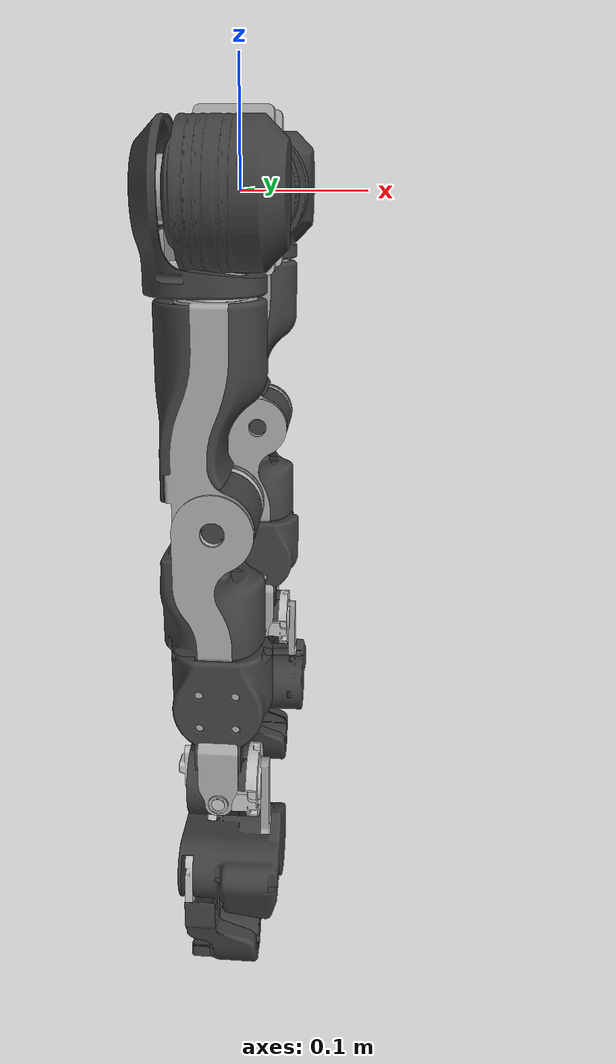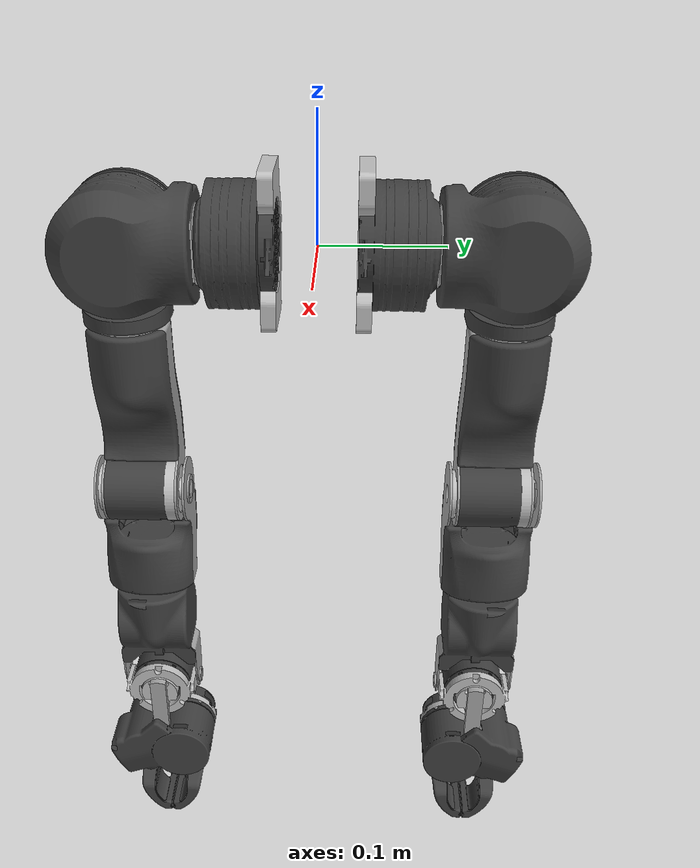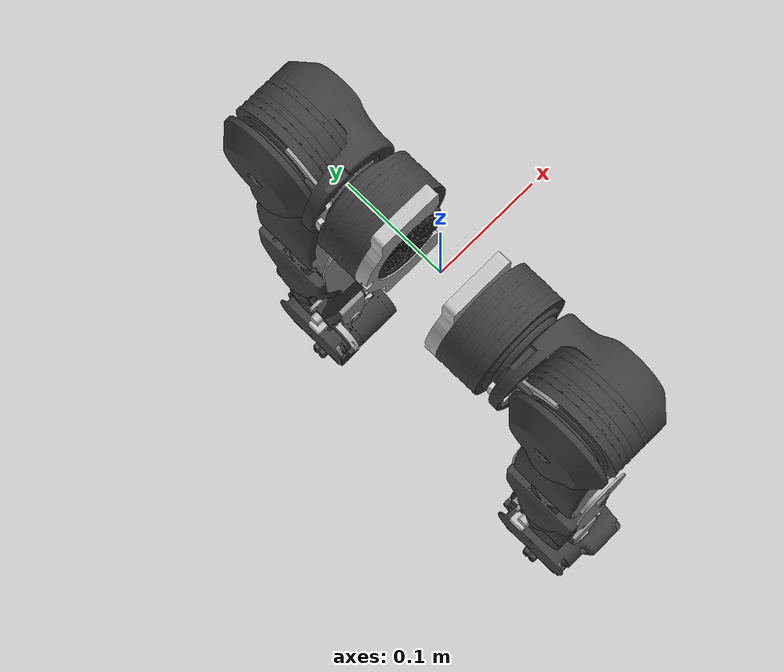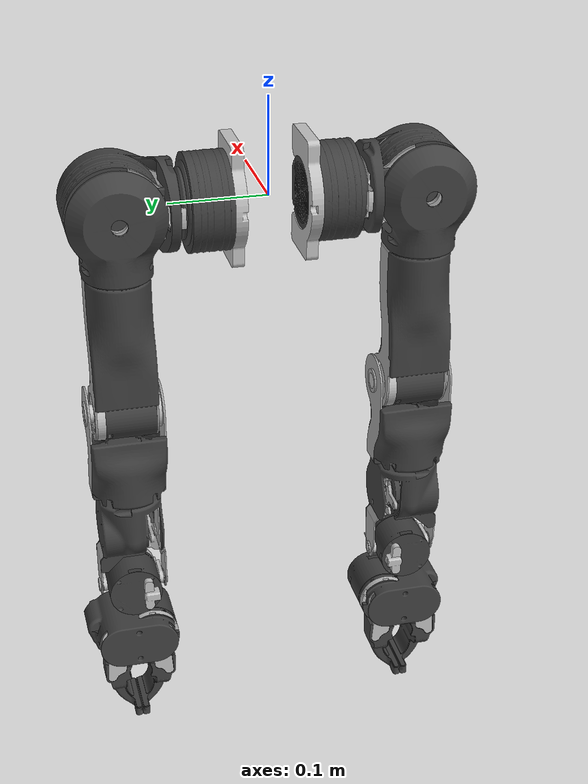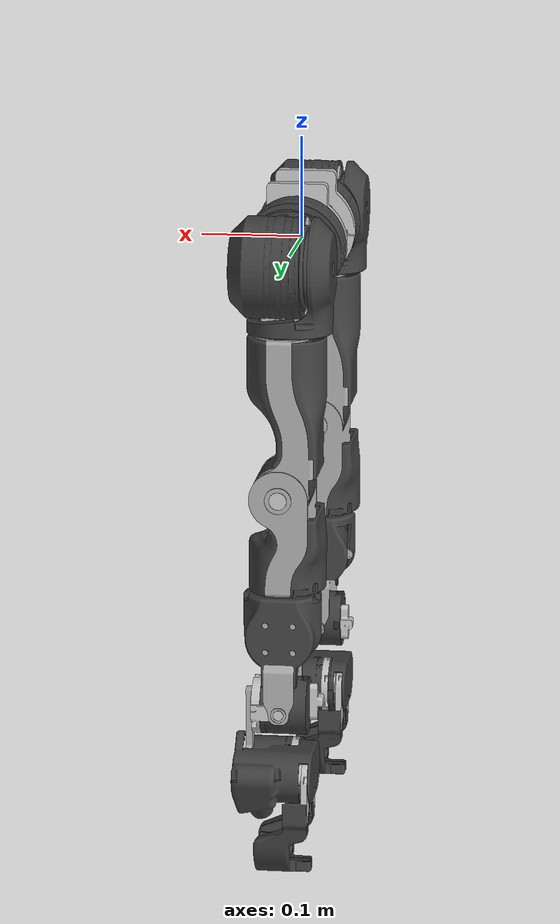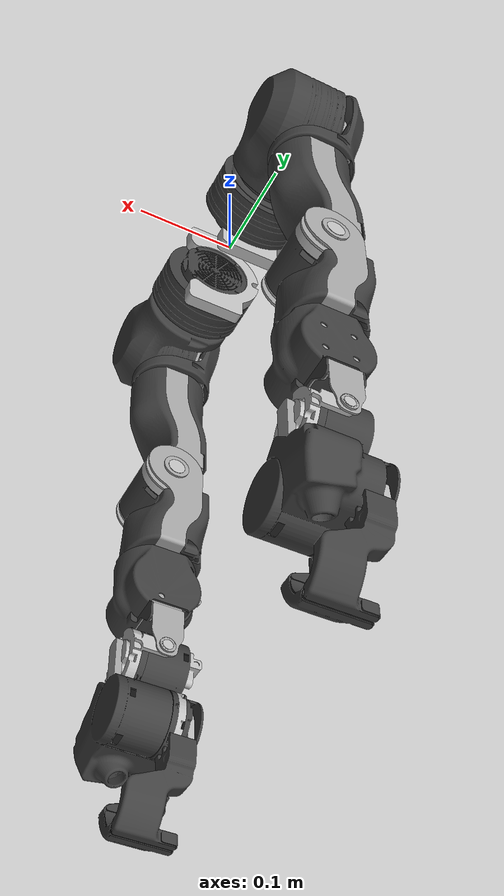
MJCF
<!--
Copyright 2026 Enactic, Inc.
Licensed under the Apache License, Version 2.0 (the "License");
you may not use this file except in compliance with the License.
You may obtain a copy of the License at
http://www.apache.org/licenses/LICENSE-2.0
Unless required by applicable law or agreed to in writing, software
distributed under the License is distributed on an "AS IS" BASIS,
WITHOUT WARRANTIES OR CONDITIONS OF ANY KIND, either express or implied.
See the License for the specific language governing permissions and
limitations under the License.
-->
<?xml version='1.0' encoding='utf-8'?>

<mujoco model="openarm_v20">
  <default>
    <joint stiffness="0" ref="0.0" />
    <default class="robot">
      <default class="motor_DM8009">
        <joint frictionloss="0.2" damping="1.0" armature="0.0081" limited="true" type="hinge" />
        <motor forcelimited="true" forcerange="-40 40" />
      </default>
      <default class="motor_DM4340">
        <joint frictionloss="0.1" damping="0.9" armature="0.1600" limited="true" type="hinge" />
        <motor forcelimited="true" forcerange="-27 27" />
      </default>
      <default class="motor_DM4310">
        <joint frictionloss="0.04" damping="0.9" armature="0.0100" limited="true" type="hinge" />
        <motor forcelimited="true" forcerange="-7 7" />
      </default>
      <default class="motor_DM3507">
        <joint frictionloss="0.01" damping="0.01" armature="0.0049" limited="true" type="hinge" />
        <motor forcelimited="true" forcerange="-7 7" />
      </default>
      <default class="motor_finger">
        <joint limited="true" type="hinge" damping="2" />
        <position forcelimited="true" forcerange="-333 333" ctrllimited="true" ctrlrange="0 0.7854" />
      </default>
      <default class="lifter">
        <joint limited="true" type="slide" damping="50" />
        <position forcelimited="true" forcerange="-3000 3000" ctrllimited="true" ctrlrange="0 0.3" />
      </default>
      <default class="position_DM8009">
        <position kp="200" kv="150" forcelimited="true" forcerange="-40 40" />
      </default>
      <default class="position_DM4340">
        <position kp="100" kv="30" forcelimited="true" forcerange="-27 27" />
      </default>
      <default class="position_DM4310">
        <position kp="200" kv="5" forcelimited="true" forcerange="-7 7" />
      </default>
      <default class="position_DM3507">
        <position kp="200" kv="5" forcelimited="true" forcerange="-7 7" />
      </default>
      <default class="position_lifter">
        <position kp="8000" kv="4000" forcelimited="true" forcerange="-3000 3000" />
      </default>
      <default class="collision">
        <geom material="collision_material" condim="3" conaffinity="1" priority="1" group="3" solref="0.005 1" friction="1 0.01 0.01" />
        <equality solimp="0.99 0.999 1e-05" solref="0.005 1" />
      </default>
      <default class="visual">
        <geom material="visualgeom" contype="0" conaffinity="0" group="2" />
      </default>
    </default>
  </default>
  <compiler angle="radian" meshdir="assets" />
  <asset>
    <material name="collision_material" rgba="0.8 0.2 0.2 0.5" />
    <material name="visualgeom" rgba="0.7 0.7 0.7 1" />
    <material name="pale_silver" rgba="0.752941 0.752941 0.752941 1" specular="1.0" shininess="0.9" reflectance="0.8" />
    <material name="metal_silver" rgba="0.65 0.65 0.65 1.0" specular="1.0" shininess="0.9" reflectance="0.8" />
    <material name="matte_black" rgba="0.247 0.247 0.247 1.0" reflectance="0.05" shininess="0.5" />

    <mesh name="base_link_left_00" content_type="model/obj" file="visual/arm/base_link_00.obj" scale="1 -1 1" />
    <mesh name="base_link_left_01" content_type="model/obj" file="visual/arm/base_link_01.obj" scale="1 -1 1" />
    <mesh name="base_link_left_collision_00" content_type="model/stl" file="collision/base_link.stl" scale="1 -1 1" />
    <mesh name="link1_left_00" content_type="model/obj" file="visual/arm/link1_00.obj" scale="1 -1 1" />
    <mesh name="link1_left_01" content_type="model/obj" file="visual/arm/link1_01.obj" scale="1 -1 1" />
    <mesh name="link1_left_02" content_type="model/obj" file="visual/arm/link1_02.obj" scale="1 -1 1" />
    <mesh name="link1_left_collision_00" content_type="model/stl" file="collision/link1.stl" scale="1 -1 1" />
    <mesh name="link2_left_00" content_type="model/obj" file="visual/arm/link2_00.obj" scale="1 -1 1" />
    <mesh name="link2_left_01" content_type="model/obj" file="visual/arm/link2_01.obj" scale="1 -1 1" />
    <mesh name="link2_left_02" content_type="model/obj" file="visual/arm/link2_02.obj" scale="1 -1 1" />
    <mesh name="link2_left_collision_00" content_type="model/stl" file="collision/link2.stl" scale="1 -1 1" />
    <mesh name="link3_left_00" content_type="model/obj" file="visual/arm/link3_00.obj" />
    <mesh name="link3_left_01" content_type="model/obj" file="visual/arm/link3_01.obj" />
    <mesh name="link3_left_02" content_type="model/obj" file="visual/arm/link3_02.obj" />
    <mesh name="link3_left_collision_00" content_type="model/stl" file="collision/link3.stl" />
    <mesh name="link4_left_00" content_type="model/obj" file="visual/arm/link4_00.obj" />
    <mesh name="link4_left_01" content_type="model/obj" file="visual/arm/link4_01.obj" />
    <mesh name="link4_left_02" content_type="model/obj" file="visual/arm/link4_02.obj" />
    <mesh name="link4_left_collision_00" content_type="model/stl" file="collision/link4.stl" />
    <mesh name="link5_left_00" content_type="model/obj" file="visual/arm/link5_00.obj" scale="1 -1 1" />
    <mesh name="link5_left_01" content_type="model/obj" file="visual/arm/link5_01.obj" scale="1 -1 1" />
    <mesh name="link5_left_02" content_type="model/obj" file="visual/arm/link5_02.obj" scale="1 -1 1" />
    <mesh name="link5_left_collision_00" content_type="model/stl" file="collision/link5_part_00.stl" scale="1 -1 1" />
    <mesh name="link5_left_collision_01" content_type="model/stl" file="collision/link5_part_01.stl" scale="1 -1 1" />
    <mesh name="link5_left_collision_02" content_type="model/stl" file="collision/link5_part_02.stl" scale="1 -1 1" />
    <mesh name="link6_left_00" content_type="model/obj" file="visual/arm/link6_00.obj" scale="1 -1 1" />
    <mesh name="link6_left_01" content_type="model/obj" file="visual/arm/link6_01.obj" scale="1 -1 1" />
    <mesh name="link6_left_02" content_type="model/obj" file="visual/arm/link6_02.obj" scale="1 -1 1" />
    <mesh name="link6_left_collision_00" content_type="model/stl" file="collision/link6.stl" scale="1 -1 1" />
    <mesh name="ee_base_link_left_00" content_type="model/obj" file="visual/gripper/ee_base_link_00.obj" scale="1 -1 1" />
    <mesh name="ee_base_link_left_01" content_type="model/obj" file="visual/gripper/ee_base_link_01.obj" scale="1 -1 1" />
    <mesh name="ee_base_link_left_02" content_type="model/obj" file="visual/gripper/ee_base_link_02.obj" scale="1 -1 1" />
    <mesh name="ee_base_link_left_collision_00" content_type="model/stl" file="collision/ee_base_link.stl" scale="1 -1 1" />
    <mesh name="finger_inner_left_00" content_type="model/obj" file="visual/gripper/finger_inner_00.obj" scale="1 -1 1" />
    <mesh name="finger_inner_left_01" content_type="model/obj" file="visual/gripper/finger_inner_01.obj" scale="1 -1 1" />
    <mesh name="finger_inner_left_02" content_type="model/obj" file="visual/gripper/finger_inner_02.obj" scale="1 -1 1" />
    <mesh name="finger_inner_left_collision_00" content_type="model/stl" file="collision/finger_inner_part_00.stl" scale="1 -1 1" />
    <mesh name="finger_inner_left_collision_01" content_type="model/stl" file="collision/finger_inner_part_01.stl" scale="1 -1 1" />
    <mesh name="finger_inner_left_collision_02" content_type="model/stl" file="collision/finger_inner_part_02.stl" scale="1 -1 1" />
    <mesh name="finger_inner_left_collision_03" content_type="model/stl" file="collision/finger_inner_part_03.stl" scale="1 -1 1" />
    <mesh name="finger_outer_left_00" content_type="model/obj" file="visual/gripper/finger_outer_00.obj" scale="1 -1 1" />
    <mesh name="finger_outer_left_01" content_type="model/obj" file="visual/gripper/finger_outer_01.obj" scale="1 -1 1" />
    <mesh name="finger_outer_left_02" content_type="model/obj" file="visual/gripper/finger_outer_02.obj" scale="1 -1 1" />
    <mesh name="finger_outer_left_collision_00" content_type="model/stl" file="collision/finger_outer_part_00.stl" scale="1 -1 1" />
    <mesh name="finger_outer_left_collision_01" content_type="model/stl" file="collision/finger_outer_part_01.stl" scale="1 -1 1" />
    <mesh name="finger_outer_left_collision_02" content_type="model/stl" file="collision/finger_outer_part_02.stl" scale="1 -1 1" />
    <mesh name="finger_outer_left_collision_03" content_type="model/stl" file="collision/finger_outer_part_03.stl" scale="1 -1 1" />
    <mesh name="base_link_right_00" content_type="model/obj" file="visual/arm/base_link_00.obj" />
    <mesh name="base_link_right_01" content_type="model/obj" file="visual/arm/base_link_01.obj" />
    <mesh name="base_link_right_collision_00" content_type="model/stl" file="collision/base_link.stl" />
    <mesh name="link1_right_00" content_type="model/obj" file="visual/arm/link1_00.obj" />
    <mesh name="link1_right_01" content_type="model/obj" file="visual/arm/link1_01.obj" />
    <mesh name="link1_right_02" content_type="model/obj" file="visual/arm/link1_02.obj" />
    <mesh name="link1_right_collision_00" content_type="model/stl" file="collision/link1.stl" />
    <mesh name="link2_right_00" content_type="model/obj" file="visual/arm/link2_00.obj" />
    <mesh name="link2_right_01" content_type="model/obj" file="visual/arm/link2_01.obj" />
    <mesh name="link2_right_02" content_type="model/obj" file="visual/arm/link2_02.obj" />
    <mesh name="link2_right_collision_00" content_type="model/stl" file="collision/link2.stl" />
    <mesh name="link3_right_00" content_type="model/obj" file="visual/arm/link3_00.obj" />
    <mesh name="link3_right_01" content_type="model/obj" file="visual/arm/link3_01.obj" />
    <mesh name="link3_right_02" content_type="model/obj" file="visual/arm/link3_02.obj" />
    <mesh name="link3_right_collision_00" content_type="model/stl" file="collision/link3.stl" />
    <mesh name="link4_right_00" content_type="model/obj" file="visual/arm/link4_00.obj" />
    <mesh name="link4_right_01" content_type="model/obj" file="visual/arm/link4_01.obj" />
    <mesh name="link4_right_02" content_type="model/obj" file="visual/arm/link4_02.obj" />
    <mesh name="link4_right_collision_00" content_type="model/stl" file="collision/link4.stl" />
    <mesh name="link5_right_00" content_type="model/obj" file="visual/arm/link5_00.obj" />
    <mesh name="link5_right_01" content_type="model/obj" file="visual/arm/link5_01.obj" />
    <mesh name="link5_right_02" content_type="model/obj" file="visual/arm/link5_02.obj" />
    <mesh name="link5_right_collision_00" content_type="model/stl" file="collision/link5_part_00.stl" />
    <mesh name="link5_right_collision_01" content_type="model/stl" file="collision/link5_part_01.stl" />
    <mesh name="link5_right_collision_02" content_type="model/stl" file="collision/link5_part_02.stl" />
    <mesh name="link6_right_00" content_type="model/obj" file="visual/arm/link6_00.obj" />
    <mesh name="link6_right_01" content_type="model/obj" file="visual/arm/link6_01.obj" />
    <mesh name="link6_right_02" content_type="model/obj" file="visual/arm/link6_02.obj" />
    <mesh name="link6_right_collision_00" content_type="model/stl" file="collision/link6.stl" />
    <mesh name="ee_base_link_right_00" content_type="model/obj" file="visual/gripper/ee_base_link_00.obj" />
    <mesh name="ee_base_link_right_01" content_type="model/obj" file="visual/gripper/ee_base_link_01.obj" />
    <mesh name="ee_base_link_right_02" content_type="model/obj" file="visual/gripper/ee_base_link_02.obj" />
    <mesh name="ee_base_link_right_collision_00" content_type="model/stl" file="collision/ee_base_link.stl" />
    <mesh name="finger_inner_right_00" content_type="model/obj" file="visual/gripper/finger_inner_00.obj" />
    <mesh name="finger_inner_right_01" content_type="model/obj" file="visual/gripper/finger_inner_01.obj" />
    <mesh name="finger_inner_right_02" content_type="model/obj" file="visual/gripper/finger_inner_02.obj" />
    <mesh name="finger_inner_right_collision_00" content_type="model/stl" file="collision/finger_inner_part_00.stl" />
    <mesh name="finger_inner_right_collision_01" content_type="model/stl" file="collision/finger_inner_part_01.stl" />
    <mesh name="finger_inner_right_collision_02" content_type="model/stl" file="collision/finger_inner_part_02.stl" />
    <mesh name="finger_inner_right_collision_03" content_type="model/stl" file="collision/finger_inner_part_03.stl" />
    <mesh name="finger_outer_right_00" content_type="model/obj" file="visual/gripper/finger_outer_00.obj" />
    <mesh name="finger_outer_right_01" content_type="model/obj" file="visual/gripper/finger_outer_01.obj" />
    <mesh name="finger_outer_right_02" content_type="model/obj" file="visual/gripper/finger_outer_02.obj" />
    <mesh name="finger_outer_right_collision_00" content_type="model/stl" file="collision/finger_outer_part_00.stl" />
    <mesh name="finger_outer_right_collision_01" content_type="model/stl" file="collision/finger_outer_part_01.stl" />
    <mesh name="finger_outer_right_collision_02" content_type="model/stl" file="collision/finger_outer_part_02.stl" />
    <mesh name="finger_outer_right_collision_03" content_type="model/stl" file="collision/finger_outer_part_03.stl" />
  </asset>
  <worldbody>
    <body name="openarm_left_base_link" pos="0 0.031 0">
      <inertial pos="-0.00253124 0.0258186 -2.70658e-05" quat="-1.46856942085e-06 0.70739772103 0.706815721259 2.1457591538e-05" mass="1.14323" diaginertia="0.00159935 0.00113608 0.000750542" />
      <geom name="base_link_left_00" type="mesh" mesh="base_link_left_00" class="visual" material="matte_black" quat="0 0 1 0" />
      <geom name="base_link_left_01" type="mesh" mesh="base_link_left_01" class="visual" material="pale_silver" quat="0 0 1 0" />
      <geom name="base_link_left_collision_00" type="mesh" mesh="base_link_left_collision_00" class="collision" quat="0 0 1 0" />
      <body name="openarm_left_link1" pos="0 0.0625 0">
        <inertial pos="0.00090035 0.044466 2.88441e-05" quat="0.999901 -0.000371041 -5.04627e-05 -0.0140338" mass="1.14167" diaginertia="0.00109459 0.000758935 0.000670659" />
        <joint name="openarm_left_joint1" pos="0 0 0" axis="0 1 0" range="-3.4907 1.3963" actuatorfrcrange="-40 40" class="motor_DM8009" />
        <geom name="link1_left_00" type="mesh" mesh="link1_left_00" class="visual" material="matte_black" />
        <geom name="link1_left_01" type="mesh" mesh="link1_left_01" class="visual" material="pale_silver" />
        <geom name="link1_left_02" type="mesh" mesh="link1_left_02" class="visual" material="metal_silver" />
        <geom name="link1_left_collision_00" type="mesh" mesh="link1_left_collision_00" class="collision" />
        <body name="openarm_left_link2" pos="0 0.06 0">
          <inertial pos="-0.0247185 -7.60578e-08 -0.0312643" quat="0.999342 -6.47495e-06 -0.0362804 3.02331e-06" mass="0.277509" diaginertia="0.000153968 0.000113062 8.19211e-05" />
          <joint name="openarm_left_joint2" pos="0 0 0" axis="-1 0 0" range="-3.3161 0.17453" actuatorfrcrange="-40 40" class="motor_DM8009" />
          <geom name="link2_left_00" type="mesh" mesh="link2_left_00" class="visual" material="matte_black" />
          <geom name="link2_left_01" type="mesh" mesh="link2_left_01" class="visual" material="metal_silver" />
          <geom name="link2_left_02" type="mesh" mesh="link2_left_02" class="visual" material="pale_silver" />
          <geom name="link2_left_collision_00" type="mesh" mesh="link2_left_collision_00" class="collision" />
          <body name="openarm_left_link3" pos="0 0 -0.06625">
            <inertial pos="-0.00300862 -0.000514813 -0.109368" quat="0.998906 -0.00891348 0.0458105 0.00280505" mass="1.07386" diaginertia="0.00129561 0.00114038 0.000553361" />
            <joint name="openarm_left_joint3" pos="0 0 0" axis="0 0 -1" range="-1.5708 1.5708" actuatorfrcrange="-27 27" class="motor_DM4340" />
            <geom name="link3_left_00" type="mesh" mesh="link3_left_00" class="visual" material="matte_black" />
            <geom name="link3_left_01" type="mesh" mesh="link3_left_01" class="visual" material="metal_silver" />
            <geom name="link3_left_02" type="mesh" mesh="link3_left_02" class="visual" material="pale_silver" />
            <geom name="link3_left_collision_00" type="mesh" mesh="link3_left_collision_00" class="collision" />
            <body name="openarm_left_link4" pos="0 0 -0.15375">
              <inertial pos="-0.00310326 -0.00136539 -0.0574601" quat="0.996952 0.00947325 0.00348083 0.0773554" mass="0.634853" diaginertia="0.000469894 0.000433114 0.000245134" />
              <joint name="openarm_left_joint4" pos="0 0 0" axis="0 -1 0" range="0 2.4435" actuatorfrcrange="-27 27" class="motor_DM4340" />
              <geom name="link4_left_00" type="mesh" mesh="link4_left_00" class="visual" material="matte_black" />
              <geom name="link4_left_01" type="mesh" mesh="link4_left_01" class="visual" material="pale_silver" />
              <geom name="link4_left_02" type="mesh" mesh="link4_left_02" class="visual" material="metal_silver" />
              <geom name="link4_left_collision_00" type="mesh" mesh="link4_left_collision_00" class="collision" />
              <body name="openarm_left_link5" pos="0 0 -0.0955">
                <inertial pos="-0.000737189 0.000412407 -0.0470938" quat="0.685547 -0.0023482 -0.00297125 0.728019" mass="0.615659" diaginertia="0.000334799 0.00027946 0.000176657" />
                <joint name="openarm_left_joint5" pos="0 0 0" axis="0 0 -1" range="-1.5708 1.5708" actuatorfrcrange="-7 7" class="motor_DM4310" />
                <geom name="link5_left_00" type="mesh" mesh="link5_left_00" class="visual" material="matte_black" />
                <geom name="link5_left_01" type="mesh" mesh="link5_left_01" class="visual" material="pale_silver" />
                <geom name="link5_left_02" type="mesh" mesh="link5_left_02" class="visual" material="metal_silver" />
                <geom name="link5_left_collision_00" type="mesh" mesh="link5_left_collision_00" class="collision" />
                <geom name="link5_left_collision_01" type="mesh" mesh="link5_left_collision_01" class="collision" />
                <geom name="link5_left_collision_02" type="mesh" mesh="link5_left_collision_02" class="collision" />
                <body name="openarm_left_link6" pos="0 0 -0.1205">
                  <inertial pos="2.27438e-05 -0.000686496 5.44e-05" quat="0.999832 -0.0183155 0.000397003 -0.000757974" mass="0.475203" diaginertia="0.000179276 0.000136249 0.000135339" />
                  <joint name="openarm_left_joint6" pos="0 0 0" axis="0 -1 0" range="-0.7854 0.7854" actuatorfrcrange="-7 7" class="motor_DM4310" />
                  <geom name="link6_left_00" type="mesh" mesh="link6_left_00" class="visual" material="matte_black" />
                  <geom name="link6_left_01" type="mesh" mesh="link6_left_01" class="visual" material="metal_silver" />
                  <geom name="link6_left_02" type="mesh" mesh="link6_left_02" class="visual" material="pale_silver" />
                  <geom name="link6_left_collision_00" type="mesh" mesh="link6_left_collision_00" class="collision" />
                  <body name="openarm_left_ee_base_link">
                    <inertial pos="0.0137902 -0.0084073 -0.05938" quat="0.760121 0.648846 -0.0304587 -0.0169317" mass="0.52832" diaginertia="0.000219417 0.000166122 0.000155742" />
                    <joint name="openarm_left_joint7" pos="0 0 0" axis="1 0 0" range="-1.5708 1.5708" actuatorfrcrange="-7 7" class="motor_DM3507" />
                    <geom name="ee_base_link_left_00" pos="0.0205 0 0" quat="1 0 0 0" type="mesh" mesh="ee_base_link_left_00" class="visual" material="matte_black" />
                    <geom name="ee_base_link_left_01" pos="0.0205 0 0" type="mesh" mesh="ee_base_link_left_01" class="visual" material="metal_silver" />
                    <geom name="ee_base_link_left_02" pos="0.0205 0 0" type="mesh" mesh="ee_base_link_left_02" class="visual" material="pale_silver" />
                    <geom name="ee_base_link_left_collision_00" pos="0.0205 0 0" quat="1 0 0 0" type="mesh" mesh="ee_base_link_left_collision_00" class="collision" />
                    <camera name="camera_wrist_left" pos="0.023 0.0182 -0.10236" euler="-0.366519 0.22689 -1.5708" fovy="66" resolution="960 600"/>
                    <site name="left_ee_control_point" pos="0 0 0.0" size="0.01" rgba="0 1 0 1" />
                    <!-- Grasp-point reference frame between the jaws (fingers at z=-0.068 + tip extent),
                         used by the scripted IK pick controller. Invisible (alpha 0). -->
                    <site name="openarm_left_tcp" pos="-0.004 0 -0.135" size="0.005" rgba="0 0 0 0" />
                    <body name="openarm_left_ee_inner_finger" pos="-0.00143 -0.018 -0.068">
                      <inertial pos="-0.0124991 -0.00176593 -0.0241663" quat="0.982638 0.0922084 -0.15927 -0.0235197" mass="0.125979" diaginertia="3.8543e-05 3.6883e-05 1.43942e-05" />
                      <joint name="openarm_left_finger_joint1" pos="0 0 0" axis="-1 0 0" range="0 0.7854" actuatorfrcrange="-10 10" class="motor_finger" />
                      <geom name="finger_inner_left_00" type="mesh" mesh="finger_inner_left_00" class="visual" material="matte_black" />
                      <geom name="finger_inner_left_01" type="mesh" mesh="finger_inner_left_01" class="visual" material="matte_black" />
                      <geom name="finger_inner_left_02" type="mesh" mesh="finger_inner_left_02" class="visual" material="pale_silver" />
                      <geom name="finger_inner_left_collision_00" type="mesh" mesh="finger_inner_left_collision_00" class="collision" />
                      <geom name="finger_inner_left_collision_01" type="mesh" mesh="finger_inner_left_collision_01" class="collision" />
                      <geom name="finger_inner_left_collision_02" type="mesh" mesh="finger_inner_left_collision_02" class="collision" />
                      <geom name="finger_inner_left_collision_03" type="mesh" mesh="finger_inner_left_collision_03" class="collision" />
                    </body>
                    <body name="openarm_left_ee_outer_finger" pos="-0.00143 0.018 -0.068">
                      <inertial pos="-0.012796 0.0020183 -0.026792" quat="0.982097 -0.0906989 -0.165079 0.00294117" mass="0.11372" diaginertia="3.70662e-05 3.60159e-05 1.33599e-05" />
                      <joint name="openarm_left_finger_joint2" pos="0 0 0" axis="1 0 0" range="0 0.7854" actuatorfrcrange="-10 10" class="motor_finger" />
                      <geom name="finger_outer_left_00" type="mesh" mesh="finger_outer_left_00" class="visual" material="matte_black" />
                      <geom name="finger_outer_left_01" type="mesh" mesh="finger_outer_left_01" class="visual" material="matte_black" />
                      <geom name="finger_outer_left_02" type="mesh" mesh="finger_outer_left_02" class="visual" material="pale_silver" />
                      <geom name="finger_outer_left_collision_00" type="mesh" mesh="finger_outer_left_collision_00" class="collision" />
                      <geom name="finger_outer_left_collision_01" type="mesh" mesh="finger_outer_left_collision_01" class="collision" />
                      <geom name="finger_outer_left_collision_02" type="mesh" mesh="finger_outer_left_collision_02" class="collision" />
                      <geom name="finger_outer_left_collision_03" type="mesh" mesh="finger_outer_left_collision_03" class="collision" />
                    </body>
                  </body>
                </body>
              </body>
            </body>
          </body>
        </body>
      </body>
    </body>
    <body name="openarm_right_base_link" pos="0 -0.031 0">
      <inertial pos="-0.00253124 -0.0258186 -2.70658e-05" quat="2.1457591538e-05 0.706815721259 0.70739772103 -1.46856942085e-06" mass="1.14323" diaginertia="0.00159935 0.00113608 0.000750542" />
      <geom name="base_link_right_00" type="mesh" mesh="base_link_right_00" class="visual" material="matte_black" quat="0 0 1 0" />
      <geom name="base_link_right_01" type="mesh" mesh="base_link_right_01" class="visual" material="pale_silver" quat="0 0 1 0" />
      <geom name="base_link_right_collision_00" type="mesh" mesh="base_link_right_collision_00" class="collision" quat="0 0 1 0" />
      <body name="openarm_right_link1" pos="0 -0.0625 0">
        <inertial pos="0.00090035 -0.044466 2.88441e-05" quat="0.999901 0.000371041 -5.04627e-05 0.0140338" mass="1.14167" diaginertia="0.00109459 0.000758935 0.000670659" />
        <joint name="openarm_right_joint1" pos="0 0 0" axis="0 -1 0" range="-1.3963 3.4907" actuatorfrcrange="-40 40" class="motor_DM8009" />
        <geom name="link1_right_00" type="mesh" mesh="link1_right_00" class="visual" material="matte_black" />
        <geom name="link1_right_01" type="mesh" mesh="link1_right_01" class="visual" material="pale_silver" />
        <geom name="link1_right_02" type="mesh" mesh="link1_right_02" class="visual" material="metal_silver" />
        <geom name="link1_right_collision_00" type="mesh" mesh="link1_right_collision_00" class="collision" />
        <body name="openarm_right_link2" pos="0 -0.06 0">
          <inertial pos="-0.0247185 7.60578e-08 -0.0312643" quat="0.999342 6.47495e-06 -0.0362804 -3.02331e-06" mass="0.277509" diaginertia="0.000153968 0.000113062 8.19211e-05" />
          <joint name="openarm_right_joint2" pos="0 0 0" axis="-1 0 0" range="-0.17453 3.3161" actuatorfrcrange="-40 40" class="motor_DM8009" />
          <geom name="link2_right_00" type="mesh" mesh="link2_right_00" class="visual" material="matte_black" />
          <geom name="link2_right_01" type="mesh" mesh="link2_right_01" class="visual" material="metal_silver" />
          <geom name="link2_right_02" type="mesh" mesh="link2_right_02" class="visual" material="pale_silver" />
          <geom name="link2_right_collision_00" type="mesh" mesh="link2_right_collision_00" class="collision" />
          <body name="openarm_right_link3" pos="0 0 -0.06625">
            <inertial pos="-0.00300862 -0.000514813 -0.109368" quat="0.998906 -0.00891348 0.0458105 0.00280505" mass="1.07386" diaginertia="0.00129561 0.00114038 0.000553361" />
            <joint name="openarm_right_joint3" pos="0 0 0" axis="0 0 -1" range="-1.5708 1.5708" actuatorfrcrange="-27 27" class="motor_DM4340" />
            <geom name="link3_right_00" type="mesh" mesh="link3_right_00" class="visual" material="matte_black" />
            <geom name="link3_right_01" type="mesh" mesh="link3_right_01" class="visual" material="metal_silver" />
            <geom name="link3_right_02" type="mesh" mesh="link3_right_02" class="visual" material="pale_silver" />
            <geom name="link3_right_collision_00" type="mesh" mesh="link3_right_collision_00" class="collision" />
            <body name="openarm_right_link4" pos="0 0 -0.15375">
              <inertial pos="-0.00310326 -0.00136539 -0.0574601" quat="0.996952 0.00947325 0.00348083 0.0773554" mass="0.634853" diaginertia="0.000469894 0.000433114 0.000245134" />
              <joint name="openarm_right_joint4" pos="0 0 0" axis="0 -1 0" range="0 2.4435" actuatorfrcrange="-27 27" class="motor_DM4340" />
              <geom name="link4_right_00" type="mesh" mesh="link4_right_00" class="visual" material="matte_black" />
              <geom name="link4_right_01" type="mesh" mesh="link4_right_01" class="visual" material="pale_silver" />
              <geom name="link4_right_02" type="mesh" mesh="link4_right_02" class="visual" material="metal_silver" />
              <geom name="link4_right_collision_00" type="mesh" mesh="link4_right_collision_00" class="collision" />
              <body name="openarm_right_link5" pos="0 0 -0.0955">
                <inertial pos="-0.000737189 -0.000412407 -0.0470938" quat="0.728019 -0.00297125 -0.0023482 0.685547" mass="0.615659" diaginertia="0.000334799 0.00027946 0.000176657" />
                <joint name="openarm_right_joint5" pos="0 0 0" axis="0 0 -1" range="-1.5708 1.5708" actuatorfrcrange="-7 7" class="motor_DM4310" />
                <geom name="link5_right_00" type="mesh" mesh="link5_right_00" class="visual" material="matte_black" />
                <geom name="link5_right_01" type="mesh" mesh="link5_right_01" class="visual" material="pale_silver" />
                <geom name="link5_right_02" type="mesh" mesh="link5_right_02" class="visual" material="metal_silver" />
                <geom name="link5_right_collision_00" type="mesh" mesh="link5_right_collision_00" class="collision" />
                <geom name="link5_right_collision_01" type="mesh" mesh="link5_right_collision_01" class="collision" />
                <geom name="link5_right_collision_02" type="mesh" mesh="link5_right_collision_02" class="collision" />
                <body name="openarm_right_link6" pos="0 0 -0.1205">
                  <inertial pos="2.27438e-05 0.000686496 5.44e-05" quat="0.999832 0.0183155 0.000397003 0.000757974" mass="0.475203" diaginertia="0.000179276 0.000136249 0.000135339" />
                  <joint name="openarm_right_joint6" pos="0 0 0" axis="0 1 0" range="-0.7854 0.7854" actuatorfrcrange="-7 7" class="motor_DM4310" />
                  <geom name="link6_right_00" type="mesh" mesh="link6_right_00" class="visual" material="matte_black" />
                  <geom name="link6_right_01" type="mesh" mesh="link6_right_01" class="visual" material="metal_silver" />
                  <geom name="link6_right_02" type="mesh" mesh="link6_right_02" class="visual" material="pale_silver" />
                  <geom name="link6_right_collision_00" type="mesh" mesh="link6_right_collision_00" class="collision" />
                  <body name="openarm_right_ee_base_link">
                    <inertial pos="0.0137902 0.0084073 -0.05938" quat="0.648846 0.760121 0.0169317 0.0304587" mass="0.52832" diaginertia="0.000219417 0.000166122 0.000155742" />
                    <joint name="openarm_right_joint7" pos="0 0 0" axis="1 0 0" range="-1.5708 1.5708" actuatorfrcrange="-7 7" class="motor_DM3507" />
                    <geom name="ee_base_link_right_00" pos="0.0205 0 0" quat="1 0 0 0" type="mesh" mesh="ee_base_link_right_00" class="visual" material="matte_black" />
                    <geom name="ee_base_link_right_01" pos="0.0205 0 0" type="mesh" mesh="ee_base_link_right_01" class="visual" material="metal_silver" />
                    <geom name="ee_base_link_right_02" pos="0.0205 0 0" type="mesh" mesh="ee_base_link_right_02" class="visual" material="pale_silver" />
                    <geom name="ee_base_link_right_collision_00" pos="0.0205 0 0" quat="1 0 0 0" type="mesh" mesh="ee_base_link_right_collision_00" class="collision" />
                    <camera name="camera_wrist_right" pos="0.023 -0.0182 -0.10236" euler="0.366519 0.22689 -1.5708" fovy="66" resolution="960 600"/>
                    <site name="right_ee_control_point" pos="0.0 0.0 0.0" size="0.01" rgba="1 0 0 1" />
                    <body name="openarm_right_ee_inner_finger" pos="-0.00143 0.018 -0.068">
                      <inertial pos="-0.0124991 0.00176593 -0.0241663" quat="0.982638 -0.0922084 -0.15927 0.0235197" mass="0.125979" diaginertia="3.8543e-05 3.6883e-05 1.43942e-05" />
                      <joint name="openarm_right_finger_joint1" pos="0 0 0" axis="-1 0 0" range="-0.7854 0" actuatorfrcrange="-10 10" class="motor_finger" />
                      <geom name="finger_inner_right_00" type="mesh" mesh="finger_inner_right_00" class="visual" material="matte_black" />
                      <geom name="finger_inner_right_01" type="mesh" mesh="finger_inner_right_01" class="visual" material="matte_black" />
                      <geom name="finger_inner_right_02" type="mesh" mesh="finger_inner_right_02" class="visual" material="pale_silver" />
                      <geom name="finger_inner_right_collision_00" type="mesh" mesh="finger_inner_right_collision_00" class="collision" />
                      <geom name="finger_inner_right_collision_01" type="mesh" mesh="finger_inner_right_collision_01" class="collision" />
                      <geom name="finger_inner_right_collision_02" type="mesh" mesh="finger_inner_right_collision_02" class="collision" />
                      <geom name="finger_inner_right_collision_03" type="mesh" mesh="finger_inner_right_collision_03" class="collision" />
                    </body>
                    <body name="openarm_right_ee_outer_finger" pos="-0.00143 -0.018 -0.068">
                      <inertial pos="-0.012796 -0.0020183 -0.026792" quat="0.982097 0.0906989 -0.165079 -0.00294117" mass="0.11372" diaginertia="3.70662e-05 3.60159e-05 1.33599e-05" />
                      <joint name="openarm_right_finger_joint2" pos="0 0 0" axis="1 0 0" range="-0.7854 0" actuatorfrcrange="-10 10" class="motor_finger" />
                      <geom name="finger_outer_right_00" type="mesh" mesh="finger_outer_right_00" class="visual" material="matte_black" />
                      <geom name="finger_outer_right_01" type="mesh" mesh="finger_outer_right_01" class="visual" material="matte_black" />
                      <geom name="finger_outer_right_02" type="mesh" mesh="finger_outer_right_02" class="visual" material="pale_silver" />
                      <geom name="finger_outer_right_collision_00" type="mesh" mesh="finger_outer_right_collision_00" class="collision" />
                      <geom name="finger_outer_right_collision_01" type="mesh" mesh="finger_outer_right_collision_01" class="collision" />
                      <geom name="finger_outer_right_collision_02" type="mesh" mesh="finger_outer_right_collision_02" class="collision" />
                      <geom name="finger_outer_right_collision_03" type="mesh" mesh="finger_outer_right_collision_03" class="collision" />
                    </body>
                  </body>
                </body>
              </body>
            </body>
          </body>
        </body>
      </body>
    </body>
  </worldbody>
  <equality>
    <joint name="openarm_left_ee_finger_joint_mimic" joint1="openarm_left_finger_joint1" joint2="openarm_left_finger_joint2" polycoef="0 1 0 0 0" solimp="0.95 0.99 0.001" solref="0.005 1" />
    <joint name="openarm_right_ee_finger_joint_mimic" joint1="openarm_right_finger_joint1" joint2="openarm_right_finger_joint2" polycoef="0 1 0 0 0" solimp="0.95 0.99 0.001" solref="0.005 1" />
  </equality>
  <actuator>
    <position name="left_joint1_ctrl" joint="openarm_left_joint1" class="position_DM8009" kp="230" kv="2.7" ctrllimited="true" ctrlrange="-3.49066 1.39626" />
    <position name="left_joint2_ctrl" joint="openarm_left_joint2" class="position_DM8009" kp="230" kv="2.7" ctrllimited="true" ctrlrange="-3.31613 0.174533" />
    <position name="left_joint3_ctrl" joint="openarm_left_joint3" class="position_DM4340" kp="190" kv="2.2" ctrllimited="true" ctrlrange="-1.5708 1.5708" />
    <position name="left_joint4_ctrl" joint="openarm_left_joint4" class="position_DM4340" kp="190" kv="2.2" ctrllimited="true" ctrlrange="0 2.44346" />
    <position name="left_joint5_ctrl" joint="openarm_left_joint5" class="position_DM4310" kp="30" kv="1.5" ctrllimited="true" ctrlrange="-1.5708 1.5708" />
    <position name="left_joint6_ctrl" joint="openarm_left_joint6" class="position_DM4310" kp="30" kv="1.5" ctrllimited="true" ctrlrange="-0.785398 0.785398" />
    <position name="left_joint7_ctrl" joint="openarm_left_joint7" class="position_DM4310" kp="30" kv="1.5" ctrllimited="true" ctrlrange="-1.5708 1.5708" />
    <position name="left_finger1_ctrl" joint="openarm_left_finger_joint1" class="position_DM4310" kp="30" kv="0.2" ctrllimited="true" ctrlrange="0 0.7854" />
    <position name="right_joint1_ctrl" joint="openarm_right_joint1" class="position_DM8009" kp="230" kv="2.7" ctrllimited="true" ctrlrange="-1.39626 3.49066" />
    <position name="right_joint2_ctrl" joint="openarm_right_joint2" class="position_DM8009" kp="230" kv="2.7" ctrllimited="true" ctrlrange="-0.174533 3.31613" />
    <position name="right_joint3_ctrl" joint="openarm_right_joint3" class="position_DM4340" kp="190" kv="2.2" ctrllimited="true" ctrlrange="-1.5708 1.5708" />
    <position name="right_joint4_ctrl" joint="openarm_right_joint4" class="position_DM4340" kp="190" kv="2.2" ctrllimited="true" ctrlrange="0 2.44346" />
    <position name="right_joint5_ctrl" joint="openarm_right_joint5" class="position_DM4310" kp="30" kv="1.5" ctrllimited="true" ctrlrange="-1.5708 1.5708" />
    <position name="right_joint6_ctrl" joint="openarm_right_joint6" class="position_DM4310" kp="30" kv="1.5" ctrllimited="true" ctrlrange="-0.785398 0.785398" />
    <position name="right_joint7_ctrl" joint="openarm_right_joint7" class="position_DM4310" kp="30" kv="1.5" ctrllimited="true" ctrlrange="-1.5708 1.5708" />
    <position name="right_finger1_ctrl" joint="openarm_right_finger_joint1" class="position_DM4310" kp="30" kv="0.2" ctrllimited="true" ctrlrange="-0.7854 0" />
  </actuator>
  <contact>

  </contact>
</mujoco>
